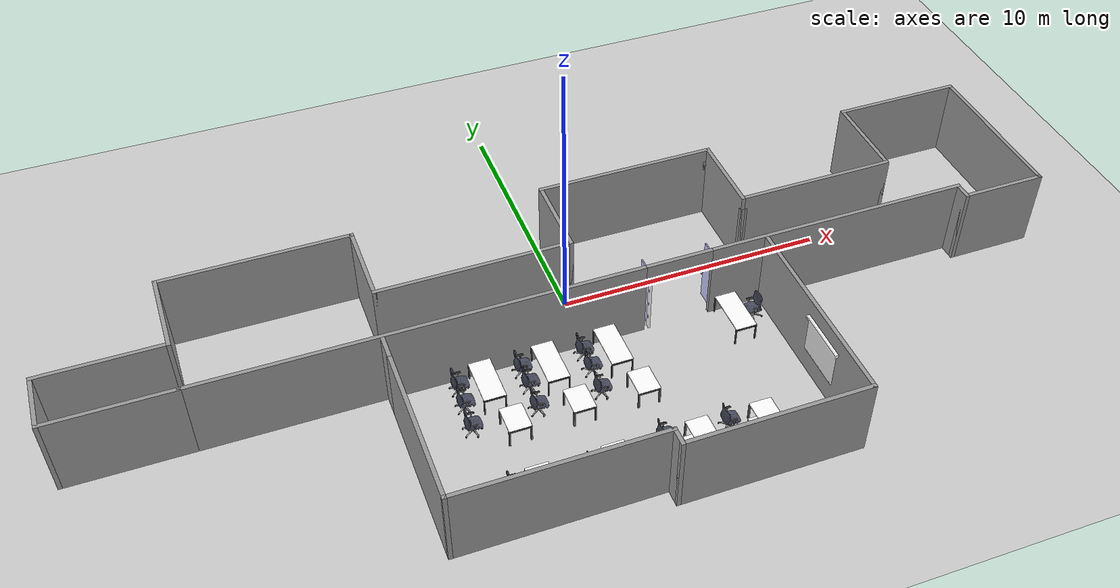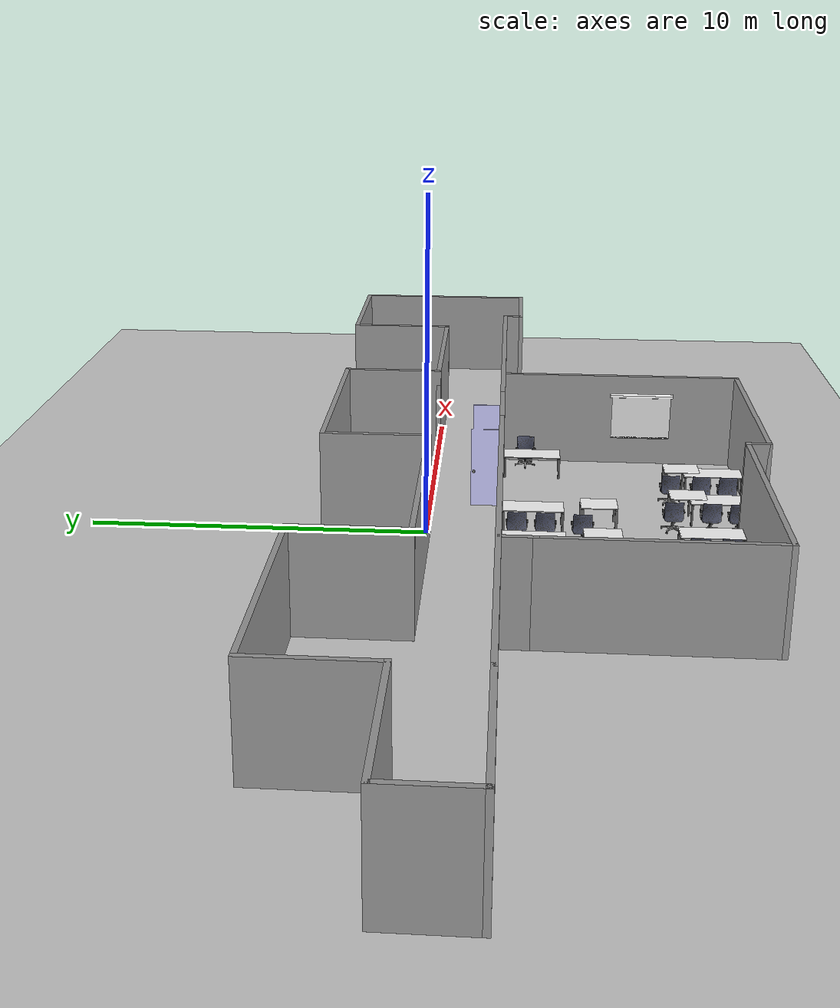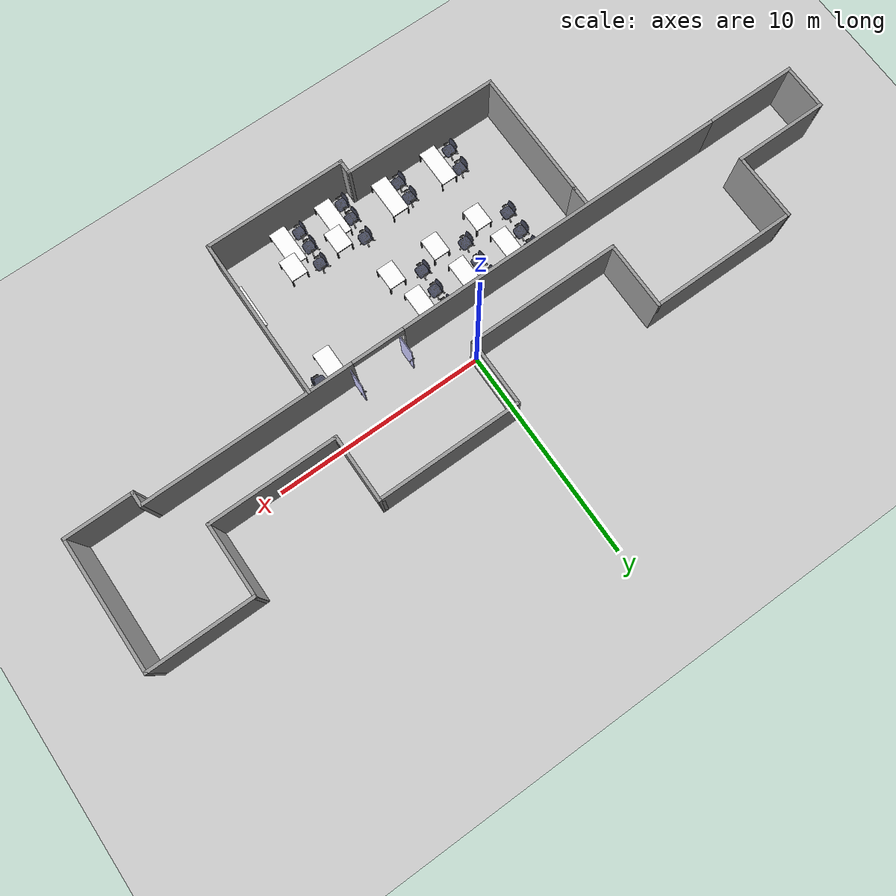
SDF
<sdf version="1.6">
 <world name="default">
  <light name="sun" type="directional">
   <pose>0 0 10 0 -0 0</pose>
   <diffuse>0.8 0.8 0.8 1</diffuse>
   <specular>0.1 0.1 0.1 1</specular>
   <attenuation>
    <range>1000</range>
    <constant>0.9</constant>
    <linear>0.01</linear>
    <quadratic>0.001</quadratic>
   </attenuation>
   <direction>-0.5 0.5 -1</direction>
  </light>
  <model name="ground_plane">
   <static>1</static>
   <link name="link">
    <collision name="collision">
     <geometry><plane><normal>0 0 1</normal><size>100 100</size></plane></geometry>
     <surface><friction><ode><mu>100</mu><mu2>50</mu2></ode></friction></surface>
    </collision>
    <visual name="visual">
     <cast_shadows>0</cast_shadows>
     <geometry><plane><normal>0 0 1</normal><size>100 100</size></plane></geometry>
     <material>
      <script><uri>file://media/materials/scripts/gazebo.material</uri><name>Gazebo/Grey</name></script>
     </material>
    </visual>
   </link>
  </model>
  <gravity>0 0 -9.8</gravity>
  <magnetic_field>6e-06 2.3e-05 -4.2e-05</magnetic_field>
  <atmosphere type="adiabatic"/>
  <physics name="default_physics" default="0" type="ode">
   <max_step_size>0.001</max_step_size>
   <real_time_factor>1</real_time_factor>
   <real_time_update_rate>1000</real_time_update_rate>
  </physics>
  <scene><ambient>0.4 0.4 0.4 1</ambient><background>0.7 0.7 0.7 1</background><shadows>1</shadows></scene>
  <spherical_coordinates>
   <surface_model>EARTH_WGS84</surface_model>
   <latitude_deg>0</latitude_deg>
   <longitude_deg>0</longitude_deg>
   <elevation>0</elevation>
   <heading_deg>0</heading_deg>
  </spherical_coordinates>
  <model name="TableLong_0">
   <model name="tableLong">
    <static>1</static>
    <link name="link">
     <inertial>
      <mass>1</mass>
      <inertia><ixx>0.01</ixx><ixy>0</ixy><ixz>0</ixz><iyy>0.01</iyy><iyz>0</iyz><izz>0.01</izz></inertia>
     </inertial>
     <collision name="collision">
      <geometry><mesh><uri>file://gamma/tableLong.dae</uri></mesh></geometry>
     </collision>
     <visual name="visual"><geometry><mesh><uri>file://gamma/tableLong.dae</uri></mesh></geometry></visual>
    </link>
   </model>
   <static>1</static>
   <pose>-2.57759 -1.92063 0 0 0 -1.57034</pose>
  </model>
  <model name="TableLong_0_clone">
   <model name="tableLong">
    <static>1</static>
    <link name="link">
     <inertial>
      <mass>1</mass>
      <inertia><ixx>0.01</ixx><ixy>0</ixy><ixz>0</ixz><iyy>0.01</iyy><iyz>0</iyz><izz>0.01</izz></inertia>
     </inertial>
     <collision name="collision">
      <geometry><mesh><uri>file://gamma/tableLong.dae</uri></mesh></geometry>
     </collision>
     <visual name="visual"><geometry><mesh><uri>file://gamma/tableLong.dae</uri></mesh></geometry></visual>
    </link>
   </model>
   <static>1</static>
   <pose>-1.62102 -7.51969 0 0 0 -1.57034</pose>
  </model>
  <model name="TableLong_0_clone_0">
   <model name="tableLong">
    <static>1</static>
    <link name="link">
     <inertial>
      <mass>1</mass>
      <inertia><ixx>0.01</ixx><ixy>0</ixy><ixz>0</ixz><iyy>0.01</iyy><iyz>0</iyz><izz>0.01</izz></inertia>
     </inertial>
     <collision name="collision">
      <geometry><mesh><uri>file://gamma/tableLong.dae</uri></mesh></geometry>
     </collision>
     <visual name="visual"><geometry><mesh><uri>file://gamma/tableLong.dae</uri></mesh></geometry></visual>
    </link>
   </model>
   <static>1</static>
   <pose>-4.89637 -1.91843 0 0 0 -1.57034</pose>
  </model>
  <model name="TableLong_0_clone_1">
   <model name="tableLong">
    <static>1</static>
    <link name="link">
     <inertial>
      <mass>1</mass>
      <inertia><ixx>0.01</ixx><ixy>0</ixy><ixz>0</ixz><iyy>0.01</iyy><iyz>0</iyz><izz>0.01</izz></inertia>
     </inertial>
     <collision name="collision">
      <geometry><mesh><uri>file://gamma/tableLong.dae</uri></mesh></geometry>
     </collision>
     <visual name="visual"><geometry><mesh><uri>file://gamma/tableLong.dae</uri></mesh></geometry></visual>
    </link>
   </model>
   <static>1</static>
   <pose>-7.19678 -1.9611 0 0 0 -1.57034</pose>
  </model>
  <model name="TableLong_0_clone_2">
   <model name="tableLong">
    <static>1</static>
    <link name="link">
     <inertial>
      <mass>1</mass>
      <inertia><ixx>0.01</ixx><ixy>0</ixy><ixz>0</ixz><iyy>0.01</iyy><iyz>0</iyz><izz>0.01</izz></inertia>
     </inertial>
     <collision name="collision">
      <geometry><mesh><uri>file://gamma/tableLong.dae</uri></mesh></geometry>
     </collision>
     <visual name="visual"><geometry><mesh><uri>file://gamma/tableLong.dae</uri></mesh></geometry></visual>
    </link>
   </model>
   <static>1</static>
   <pose>-6.86666 -6.92785 0 0 0 -1.57034</pose>
  </model>
  <model name="TableLong_0_clone_3">
   <model name="tableLong">
    <static>1</static>
    <link name="link">
     <inertial>
      <mass>1</mass>
      <inertia><ixx>0.01</ixx><ixy>0</ixy><ixz>0</ixz><iyy>0.01</iyy><iyz>0</iyz><izz>0.01</izz></inertia>
     </inertial>
     <collision name="collision">
      <geometry><mesh><uri>file://gamma/tableLong.dae</uri></mesh></geometry>
     </collision>
     <visual name="visual"><geometry><mesh><uri>file://gamma/tableLong.dae</uri></mesh></geometry></visual>
    </link>
   </model>
   <static>1</static>
   <pose>-4.25811 -6.9373 0 0 0 -1.57034</pose>
  </model>
  <model name="TableLong_0_clone_4">
   <model name="tableLong">
    <static>1</static>
    <link name="link">
     <inertial>
      <mass>1</mass>
      <inertia><ixx>0.01</ixx><ixy>0</ixy><ixz>0</ixz><iyy>0.01</iyy><iyz>0</iyz><izz>0.01</izz></inertia>
     </inertial>
     <collision name="collision">
      <geometry><mesh><uri>file://gamma/tableLong.dae</uri></mesh></geometry>
     </collision>
     <visual name="visual"><geometry><mesh><uri>file://gamma/tableLong.dae</uri></mesh></geometry></visual>
    </link>
   </model>
   <static>1</static>
   <pose>0.69774 -7.56296 0 0 0 -1.57034</pose>
  </model>
  <model name="TableLong_0_clone_4_clone">
   <model name="tableLong">
    <static>1</static>
    <link name="link">
     <inertial>
      <mass>1</mass>
      <inertia><ixx>0.01</ixx><ixy>0</ixy><ixz>0</ixz><iyy>0.01</iyy><iyz>0</iyz><izz>0.01</izz></inertia>
     </inertial>
     <collision name="collision">
      <geometry><mesh><uri>file://gamma/tableLong.dae</uri></mesh></geometry>
     </collision>
     <visual name="visual"><geometry><mesh><uri>file://gamma/tableLong.dae</uri></mesh></geometry></visual>
    </link>
   </model>
   <static>1</static>
   <pose>2.12513 -1.93716 0 0 0 -1.57034</pose>
  </model>
  <model name="chair">
   <model name="chair">
    <static>1</static>
    <link name="link">
     <inertial>
      <mass>1</mass>
      <inertia><ixx>0.01</ixx><ixy>0</ixy><ixz>0</ixz><iyy>0.01</iyy><iyz>0</iyz><izz>0.01</izz></inertia>
     </inertial>
     <collision name="collision"><geometry><mesh><uri>file://gamma/chair.dae</uri></mesh></geometry></collision>
     <visual name="visual"><geometry><mesh><uri>file://gamma/chair.dae</uri></mesh></geometry></visual>
    </link>
   </model>
   <static>1</static>
   <pose>-5.738 -2.17998 0 0 -0 1.55903</pose>
  </model>
  <model name="chair_clone">
   <model name="chair">
    <static>1</static>
    <link name="link">
     <inertial>
      <mass>1</mass>
      <inertia><ixx>0.01</ixx><ixy>0</ixy><ixz>0</ixz><iyy>0.01</iyy><iyz>0</iyz><izz>0.01</izz></inertia>
     </inertial>
     <collision name="collision"><geometry><mesh><uri>file://gamma/chair.dae</uri></mesh></geometry></collision>
     <visual name="visual"><geometry><mesh><uri>file://gamma/chair.dae</uri></mesh></geometry></visual>
    </link>
   </model>
   <static>1</static>
   <pose>-5.79257 -3.02116 0 0 -0 1.55903</pose>
  </model>
  <model name="chair_clone_0">
   <model name="chair">
    <static>1</static>
    <link name="link">
     <inertial>
      <mass>1</mass>
      <inertia><ixx>0.01</ixx><ixy>0</ixy><ixz>0</ixz><iyy>0.01</iyy><iyz>0</iyz><izz>0.01</izz></inertia>
     </inertial>
     <collision name="collision"><geometry><mesh><uri>file://gamma/chair.dae</uri></mesh></geometry></collision>
     <visual name="visual"><geometry><mesh><uri>file://gamma/chair.dae</uri></mesh></geometry></visual>
    </link>
   </model>
   <static>1</static>
   <pose>-5.85785 -4.07208 0 0 -0 1.55903</pose>
  </model>
  <model name="chair_clone_1">
   <model name="chair">
    <static>1</static>
    <link name="link">
     <inertial>
      <mass>1</mass>
      <inertia><ixx>0.01</ixx><ixy>0</ixy><ixz>0</ixz><iyy>0.01</iyy><iyz>0</iyz><izz>0.01</izz></inertia>
     </inertial>
     <collision name="collision"><geometry><mesh><uri>file://gamma/chair.dae</uri></mesh></geometry></collision>
     <visual name="visual"><geometry><mesh><uri>file://gamma/chair.dae</uri></mesh></geometry></visual>
    </link>
   </model>
   <static>1</static>
   <pose>-5.48 -8.0137 0 0 -0 1.55903</pose>
  </model>
  <model name="chair_clone_2">
   <model name="chair">
    <static>1</static>
    <link name="link">
     <inertial>
      <mass>1</mass>
      <inertia><ixx>0.01</ixx><ixy>0</ixy><ixz>0</ixz><iyy>0.01</iyy><iyz>0</iyz><izz>0.01</izz></inertia>
     </inertial>
     <collision name="collision"><geometry><mesh><uri>file://gamma/chair.dae</uri></mesh></geometry></collision>
     <visual name="visual"><geometry><mesh><uri>file://gamma/chair.dae</uri></mesh></geometry></visual>
    </link>
   </model>
   <static>1</static>
   <pose>-5.36894 -7.03181 0 0 -0 1.55903</pose>
  </model>
  <model name="2ndfloor_0.0.2">
   <pose>-0.20355 -3.19019 0 0 -0 0</pose>
   <link name="Wall_1">
    <collision name="Wall_1_Collision">
     <geometry><box><size>6 0.15 3</size></box></geometry>
     <pose>0 0 1.5 0 -0 0</pose>
    </collision>
    <visual name="Wall_1_Visual">
     <pose>0 0 1.5 0 -0 0</pose>
     <geometry><box><size>6 0.15 3</size></box></geometry>
     <material>
      <script><uri>file://media/materials/scripts/gazebo.material</uri><name>Gazebo/Grey</name></script>
      <ambient>1 1 1 1</ambient>
     </material>
     <meta><layer>0</layer></meta>
    </visual>
    <pose>10.125 3.201 0 0 -0 0</pose>
   </link>
   <link name="Wall_10">
    <collision name="Wall_10_Collision">
     <geometry><box><size>4.5 0.15 3</size></box></geometry>
     <pose>0 0 1.5 0 -0 0</pose>
    </collision>
    <visual name="Wall_10_Visual">
     <pose>0 0 1.5 0 -0 0</pose>
     <geometry><box><size>4.5 0.15 3</size></box></geometry>
     <material>
      <script><uri>file://media/materials/scripts/gazebo.material</uri><name>Gazebo/Grey</name></script>
      <ambient>1 1 1 1</ambient>
     </material>
     <meta><layer>0</layer></meta>
    </visual>
    <pose>-15.725 1.051 0 0 -0 3.14159</pose>
   </link>
   <link name="Wall_11">
    <collision name="Wall_11_Collision">
     <geometry><box><size>2.25 0.15 3</size></box></geometry>
     <pose>0 0 1.5 0 -0 0</pose>
    </collision>
    <visual name="Wall_11_Visual">
     <pose>0 0 1.5 0 -0 0</pose>
     <geometry><box><size>2.25 0.15 3</size></box></geometry>
     <material>
      <script><uri>file://media/materials/scripts/gazebo.material</uri><name>Gazebo/Grey</name></script>
      <ambient>1 1 1 1</ambient>
     </material>
     <meta><layer>0</layer></meta>
    </visual>
    <pose>-17.9 2.101 0 0 -0 1.5708</pose>
   </link>
   <link name="Wall_12">
    <collision name="Wall_12_Collision">
     <geometry><box><size>4.5 0.15 3</size></box></geometry>
     <pose>0 0 1.5 0 -0 0</pose>
    </collision>
    <visual name="Wall_12_Visual">
     <pose>0 0 1.5 0 -0 0</pose>
     <geometry><box><size>4.5 0.15 3</size></box></geometry>
     <material>
      <script><uri>file://media/materials/scripts/gazebo.material</uri><name>Gazebo/Grey</name></script>
      <ambient>1 1 1 1</ambient>
     </material>
     <meta><layer>0</layer></meta>
    </visual>
    <pose>-15.725 3.151 0 0 -0 0</pose>
   </link>
   <link name="Wall_13">
    <collision name="Wall_13_Collision">
     <geometry><box><size>3.25 0.15 3</size></box></geometry>
     <pose>0 0 1.5 0 -0 0</pose>
    </collision>
    <visual name="Wall_13_Visual">
     <pose>0 0 1.5 0 -0 0</pose>
     <geometry><box><size>3.25 0.15 3</size></box></geometry>
     <material>
      <script><uri>file://media/materials/scripts/gazebo.material</uri><name>Gazebo/Grey</name></script>
      <ambient>1 1 1 1</ambient>
     </material>
     <meta><layer>0</layer></meta>
    </visual>
    <pose>-13.55 4.701 0 0 -0 1.5708</pose>
   </link>
   <link name="Wall_14">
    <collision name="Wall_14_Collision">
     <geometry><box><size>7 0.15 3</size></box></geometry>
     <pose>0 0 1.5 0 -0 0</pose>
    </collision>
    <visual name="Wall_14_Visual">
     <pose>0 0 1.5 0 -0 0</pose>
     <geometry><box><size>7 0.15 3</size></box></geometry>
     <material>
      <script><uri>file://media/materials/scripts/gazebo.material</uri><name>Gazebo/Grey</name></script>
      <ambient>1 1 1 1</ambient>
     </material>
     <meta><layer>0</layer></meta>
    </visual>
    <pose>-10.125 6.251 0 0 -0 0</pose>
   </link>
   <link name="Wall_15">
    <collision name="Wall_15_Collision">
     <geometry><box><size>3.25 0.15 3</size></box></geometry>
     <pose>0 0 1.5 0 -0 0</pose>
    </collision>
    <visual name="Wall_15_Visual">
     <pose>0 0 1.5 0 -0 0</pose>
     <geometry><box><size>3.25 0.15 3</size></box></geometry>
     <material>
      <script><uri>file://media/materials/scripts/gazebo.material</uri><name>Gazebo/Grey</name></script>
      <ambient>1 1 1 1</ambient>
     </material>
     <meta><layer>0</layer></meta>
    </visual>
    <pose>-6.7 4.701 0 0 -0 -1.5708</pose>
   </link>
   <link name="Wall_16">
    <collision name="Wall_16_Collision">
     <geometry><box><size>7.25 0.15 3</size></box></geometry>
     <pose>0 0 1.5 0 -0 0</pose>
    </collision>
    <visual name="Wall_16_Visual">
     <pose>0 0 1.5 0 -0 0</pose>
     <geometry><box><size>7.25 0.15 3</size></box></geometry>
     <material>
      <script><uri>file://media/materials/scripts/gazebo.material</uri><name>Gazebo/Grey</name></script>
      <ambient>1 1 1 1</ambient>
     </material>
     <meta><layer>0</layer></meta>
    </visual>
    <pose>-3.15 3.151 0 0 -0 0</pose>
   </link>
   <link name="Wall_17">
    <collision name="Wall_17_Collision">
     <geometry><box><size>3.25 0.15 3</size></box></geometry>
     <pose>0 0 1.5 0 -0 0</pose>
    </collision>
    <visual name="Wall_17_Visual">
     <pose>0 0 1.5 0 -0 0</pose>
     <geometry><box><size>3.25 0.15 3</size></box></geometry>
     <material>
      <script><uri>file://media/materials/scripts/gazebo.material</uri><name>Gazebo/Grey</name></script>
      <ambient>1 1 1 1</ambient>
     </material>
     <meta><layer>0</layer></meta>
    </visual>
    <pose>0.399999 4.701 0 0 -0 1.5708</pose>
   </link>
   <link name="Wall_2">
    <collision name="Wall_2_Collision">
     <geometry><box><size>3.5 0.15 3</size></box></geometry>
     <pose>0 0 1.5 0 -0 0</pose>
    </collision>
    <visual name="Wall_2_Visual">
     <pose>0 0 1.5 0 -0 0</pose>
     <geometry><box><size>3.5 0.15 3</size></box></geometry>
     <material>
      <script><uri>file://media/materials/scripts/gazebo.material</uri><name>Gazebo/Grey</name></script>
      <ambient>1 1 1 1</ambient>
     </material>
     <meta><layer>0</layer></meta>
    </visual>
    <pose>13.05 4.876 0 0 -0 1.5708</pose>
   </link>
   <link name="Wall_22">
    <collision name="Wall_22_Collision">
     <geometry><box><size>6.75 0.15 3</size></box></geometry>
     <pose>0 0 1.5 0 -0 0</pose>
    </collision>
    <visual name="Wall_22_Visual">
     <pose>0 0 1.5 0 -0 0</pose>
     <geometry><box><size>6.75 0.15 3</size></box></geometry>
     <material>
      <script><uri>file://media/materials/scripts/gazebo.material</uri><name>Gazebo/Grey</name></script>
      <ambient>1 1 1 1</ambient>
     </material>
     <meta><layer>0</layer></meta>
    </visual>
    <pose>3.7 6.251 0 0 -0 0</pose>
   </link>
   <link name="Wall_26">
    <collision name="Wall_26_Collision">
     <geometry><box><size>0.25 0.15 2.5</size></box></geometry>
     <pose>0 0 1.25 0 -0 0</pose>
    </collision>
    <visual name="Wall_26_Visual">
     <pose>0 0 1.25 0 -0 0</pose>
     <geometry><box><size>0.25 0.15 2.5</size></box></geometry>
     <material>
      <script><uri>file://media/materials/scripts/gazebo.material</uri><name>Gazebo/Grey</name></script>
      <ambient>1 1 1 1</ambient>
     </material>
     <meta><layer>0</layer></meta>
    </visual>
    <pose>7.05 6.251 0 0 -0 0</pose>
   </link>
   <link name="Wall_28">
    <collision name="Wall_28_Collision">
     <geometry><box><size>0.15 0.15 2.5</size></box></geometry>
     <pose>0 0 1.25 0 -0 0</pose>
    </collision>
    <visual name="Wall_28_Visual">
     <pose>0 0 1.25 0 -0 0</pose>
     <geometry><box><size>0.15 0.15 2.5</size></box></geometry>
     <material>
      <script><uri>file://media/materials/scripts/gazebo.material</uri><name>Gazebo/Grey</name></script>
      <ambient>1 1 1 1</ambient>
     </material>
     <meta><layer>0</layer></meta>
    </visual>
    <pose>7.2 3.201 0 0 -0 0</pose>
   </link>
   <link name="Wall_29">
    <collision name="Wall_29_Collision">
     <geometry><box><size>0.15 0.15 2.5</size></box></geometry>
     <pose>0 0 1.25 0 -0 0</pose>
    </collision>
    <visual name="Wall_29_Visual">
     <pose>0 0 1.25 0 -0 0</pose>
     <geometry><box><size>0.15 0.15 2.5</size></box></geometry>
     <material>
      <script><uri>file://media/materials/scripts/gazebo.material</uri><name>Gazebo/Grey</name></script>
      <ambient>1 1 1 1</ambient>
     </material>
     <meta><layer>0</layer></meta>
    </visual>
    <pose>7.2 3.201 0 0 -0 0</pose>
   </link>
   <link name="Wall_3">
    <collision name="Wall_3_Collision">
     <geometry><box><size>5 0.15 3</size></box></geometry>
     <pose>0 0 1.5 0 -0 0</pose>
    </collision>
    <visual name="Wall_3_Visual">
     <pose>0 0 1.5 0 -0 0</pose>
     <geometry><box><size>5 0.15 3</size></box></geometry>
     <material>
      <script><uri>file://media/materials/scripts/gazebo.material</uri><name>Gazebo/Grey</name></script>
      <ambient>1 1 1 1</ambient>
     </material>
     <meta><layer>0</layer></meta>
    </visual>
    <pose>15.475 6.551 0 0 -0 0</pose>
   </link>
   <link name="Wall_30">
    <collision name="Wall_30_Collision">
     <geometry><box><size>0.15 0.15 2.5</size></box></geometry>
     <pose>0 0 1.25 0 -0 0</pose>
    </collision>
    <visual name="Wall_30_Visual">
     <pose>0 0 1.25 0 -0 0</pose>
     <geometry><box><size>0.15 0.15 2.5</size></box></geometry>
     <material>
      <script><uri>file://media/materials/scripts/gazebo.material</uri><name>Gazebo/Grey</name></script>
      <ambient>1 1 1 1</ambient>
     </material>
     <meta><layer>0</layer></meta>
    </visual>
    <pose>7.2 3.201 0 0 -0 0</pose>
   </link>
   <link name="Wall_31">
    <collision name="Wall_31_Collision">
     <geometry><box><size>0.16 0.15 2.5</size></box></geometry>
     <pose>0 0 1.25 0 -0 0</pose>
    </collision>
    <visual name="Wall_31_Visual">
     <pose>0 0 1.25 0 -0 0</pose>
     <geometry><box><size>0.16 0.15 2.5</size></box></geometry>
     <material>
      <script><uri>file://media/materials/scripts/gazebo.material</uri><name>Gazebo/Grey</name></script>
      <ambient>1 1 1 1</ambient>
     </material>
     <meta><layer>0</layer></meta>
    </visual>
    <pose>7.20497 3.20099 0 0 -0 -0.001416</pose>
   </link>
   <link name="Wall_33">
    <collision name="Wall_33_Collision">
     <geometry><box><size>0.25 0.15 2.5</size></box></geometry>
     <pose>0 0 1.25 0 -0 0</pose>
    </collision>
    <visual name="Wall_33_Visual">
     <pose>0 0 1.25 0 -0 0</pose>
     <geometry><box><size>0.25 0.15 2.5</size></box></geometry>
     <material>
      <script><uri>file://media/materials/scripts/gazebo.material</uri><name>Gazebo/Grey</name></script>
      <ambient>1 1 1 1</ambient>
     </material>
     <meta><layer>0</layer></meta>
    </visual>
    <pose>7.15 3.201 0 0 -0 3.14159</pose>
   </link>
   <link name="Wall_34">
    <collision name="Wall_34_Collision">
     <geometry><box><size>3.2 0.15 3</size></box></geometry>
     <pose>0 0 1.5 0 -0 0</pose>
    </collision>
    <visual name="Wall_34_Visual">
     <pose>0 0 1.5 0 -0 0</pose>
     <geometry><box><size>3.2 0.15 3</size></box></geometry>
     <material>
      <script><uri>file://media/materials/scripts/gazebo.material</uri><name>Gazebo/Grey</name></script>
      <ambient>1 1 1 1</ambient>
     </material>
     <meta><layer>0</layer></meta>
    </visual>
    <pose>7.1 4.726 0 0 -0 1.5708</pose>
   </link>
   <link name="Wall_36">
    <collision name="Wall_36_Collision">
     <geometry><box><size>7.75 0.15 3</size></box></geometry>
     <pose>0 0 1.5 0 -0 0</pose>
    </collision>
    <visual name="Wall_36_Visual">
     <pose>0 0 1.5 0 -0 0</pose>
     <geometry><box><size>7.75 0.15 3</size></box></geometry>
     <material>
      <script><uri>file://media/materials/scripts/gazebo.material</uri><name>Gazebo/Grey</name></script>
      <ambient>1 1 1 1</ambient>
     </material>
     <meta><layer>0</layer></meta>
    </visual>
    <pose>6.965 -2.751 0 0 -0 -1.5708</pose>
   </link>
   <link name="Wall_37">
    <collision name="Wall_37_Collision">
     <geometry><box><size>6.75 0.15 3</size></box></geometry>
     <pose>0 0 1.5 0 -0 0</pose>
    </collision>
    <visual name="Wall_37_Visual">
     <pose>0 0 1.5 0 -0 0</pose>
     <geometry><box><size>6.75 0.15 3</size></box></geometry>
     <material>
      <script><uri>file://media/materials/scripts/gazebo.material</uri><name>Gazebo/Grey</name></script>
      <ambient>1 1 1 1</ambient>
     </material>
     <meta><layer>0</layer></meta>
    </visual>
    <pose>3.665 -6.551 0 0 -0 3.14159</pose>
   </link>
   <link name="Wall_38">
    <collision name="Wall_38_Collision">
     <geometry><box><size>0.75 0.15 3</size></box></geometry>
     <pose>0 0 1.5 0 -0 0</pose>
    </collision>
    <visual name="Wall_38_Visual">
     <pose>0 0 1.5 0 -0 0</pose>
     <geometry><box><size>0.75 0.15 3</size></box></geometry>
     <material>
      <script><uri>file://media/materials/scripts/gazebo.material</uri><name>Gazebo/Grey</name></script>
      <ambient>1 1 1 1</ambient>
     </material>
     <meta><layer>0</layer></meta>
    </visual>
    <pose>0.365 -6.251 0 0 -0 1.5708</pose>
   </link>
   <link name="Wall_39">
    <collision name="Wall_39_Collision">
     <geometry><box><size>7.5 0.15 3</size></box></geometry>
     <pose>0 0 1.5 0 -0 0</pose>
    </collision>
    <visual name="Wall_39_Visual">
     <pose>0 0 1.5 0 -0 0</pose>
     <geometry><box><size>7.5 0.15 3</size></box></geometry>
     <material>
      <script><uri>file://media/materials/scripts/gazebo.material</uri><name>Gazebo/Grey</name></script>
      <ambient>1 1 1 1</ambient>
     </material>
     <meta><layer>0</layer></meta>
    </visual>
    <pose>-3.31 -5.951 0 0 -0 3.14159</pose>
   </link>
   <link name="Wall_44">
    <collision name="Wall_44_Collision">
     <geometry><box><size>6.25 0.15 3</size></box></geometry>
     <pose>0 0 1.5 0 -0 0</pose>
    </collision>
    <visual name="Wall_44_Visual">
     <pose>0 0 1.5 0 -0 0</pose>
     <geometry><box><size>6.25 0.15 3</size></box></geometry>
     <material>
      <script><uri>file://media/materials/scripts/gazebo.material</uri><name>Gazebo/Grey</name></script>
      <ambient>1 1 1 1</ambient>
     </material>
     <meta><layer>0</layer></meta>
    </visual>
    <pose>-6.985 -2.901 0 0 -0 1.5708</pose>
   </link>
   <link name="Wall_45">
    <collision name="Wall_45_Collision">
     <geometry><box><size>1 0.15 3</size></box></geometry>
     <pose>0 0 1.5 0 -0 0</pose>
    </collision>
    <visual name="Wall_45_Visual">
     <pose>0 0 1.5 0 -0 0</pose>
     <geometry><box><size>1 0.15 3</size></box></geometry>
     <material>
      <script><uri>file://media/materials/scripts/gazebo.material</uri><name>Gazebo/Grey</name></script>
      <ambient>1 1 1 1</ambient>
     </material>
     <meta><layer>0</layer></meta>
    </visual>
    <pose>-6.985 0.574 0 0 -0 1.5708</pose>
   </link>
   <link name="Wall_6">
    <collision name="Wall_6_Collision">
     <geometry><box><size>6.25 0.15 3</size></box></geometry>
     <pose>0 0 1.5 0 -0 0</pose>
    </collision>
    <visual name="Wall_6_Visual">
     <pose>0 0 1.5 0 -0 0</pose>
     <geometry><box><size>6.25 0.15 3</size></box></geometry>
     <material>
      <script><uri>file://media/materials/scripts/gazebo.material</uri><name>Gazebo/Grey</name></script>
      <ambient>1 1 1 1</ambient>
     </material>
     <meta><layer>0</layer></meta>
    </visual>
    <pose>17.9 3.501 0 0 -0 -1.5708</pose>
   </link>
   <link name="Wall_7">
    <collision name="Wall_7_Collision">
     <geometry><box><size>3.25 0.15 3</size></box></geometry>
     <pose>0 0 1.5 0 -0 0</pose>
    </collision>
    <visual name="Wall_7_Visual">
     <pose>0 0 1.5 0 -0 0</pose>
     <geometry><box><size>3.25 0.15 3</size></box></geometry>
     <material>
      <script><uri>file://media/materials/scripts/gazebo.material</uri><name>Gazebo/Grey</name></script>
      <ambient>1 1 1 1</ambient>
     </material>
     <meta><layer>0</layer></meta>
    </visual>
    <pose>16.35 0.451 0 0 -0 3.14159</pose>
   </link>
   <link name="Wall_8">
    <collision name="Wall_8_Collision">
     <geometry><box><size>0.75 0.15 3</size></box></geometry>
     <pose>0 0 1.5 0 -0 0</pose>
    </collision>
    <visual name="Wall_8_Visual">
     <pose>0 0 1.5 0 -0 0</pose>
     <geometry><box><size>0.75 0.15 3</size></box></geometry>
     <material>
      <script><uri>file://media/materials/scripts/gazebo.material</uri><name>Gazebo/Grey</name></script>
      <ambient>1 1 1 1</ambient>
     </material>
     <meta><layer>0</layer></meta>
    </visual>
    <pose>14.8 0.751 0 0 -0 1.5708</pose>
   </link>
   <link name="Wall_9">
    <pose>0.625 1.051 0 0 -0 3.14159</pose>
    <visual name="Wall_9_Visual_0">
     <pose>-9.256 0 1.5 0 -0 0</pose>
     <geometry><box><size>9.98801 0.15 3</size></box></geometry>
     <material>
      <script><uri>file://media/materials/scripts/gazebo.material</uri><name>Gazebo/Grey</name></script>
      <ambient>1 1 1 1</ambient>
     </material>
     <meta><layer>0</layer></meta>
    </visual>
    <collision name="Wall_9_Collision_0">
     <geometry><box><size>9.98801 0.15 3</size></box></geometry>
     <pose>-9.256 0 1.5 0 -0 0</pose>
    </collision>
    <visual name="Wall_9_Visual_1">
     <pose>6.244 0 1.5 0 -0 0</pose>
     <geometry><box><size>16.012 0.15 3</size></box></geometry>
     <material>
      <script><uri>file://media/materials/scripts/gazebo.material</uri><name>Gazebo/Grey</name></script>
      <ambient>1 1 1 1</ambient>
     </material>
     <meta><layer>0</layer></meta>
    </visual>
    <collision name="Wall_9_Collision_1">
     <geometry><box><size>16.012 0.15 3</size></box></geometry>
     <pose>6.244 0 1.5 0 -0 0</pose>
    </collision>
    <visual name="Wall_9_Visual_2">
     <pose>-3.01199 0 2.75 0 -0 0</pose>
     <geometry><box><size>2.5 0.15 0.5</size></box></geometry>
     <material>
      <script><uri>file://media/materials/scripts/gazebo.material</uri><name>Gazebo/Grey</name></script>
      <ambient>1 1 1 1</ambient>
     </material>
     <meta><layer>0</layer></meta>
    </visual>
    <collision name="Wall_9_Collision_2">
     <geometry><box><size>2.5 0.15 0.5</size></box></geometry>
     <pose>-3.01199 0 2.75 0 -0 0</pose>
    </collision>
   </link>
   <static>1</static>
  </model>
  <model name="tableShortCorrect_0_clone_1_clone">
   <link name="link">
    <pose>-1.44773 -0.968686 0 0 -0 0</pose>
    <inertial>
     <mass>1</mass>
     <inertia><ixx>0.01</ixx><ixy>0</ixy><ixz>0</ixz><iyy>0.01</iyy><iyz>0</iyz><izz>0.01</izz></inertia>
    </inertial>
    <visual name="visual">
     <geometry><mesh><uri>file://gamma/tableShort.dae</uri><scale>1.35 1.35 1</scale></mesh></geometry>
     <material><shader type="vertex"><normal_map>__default__</normal_map></shader></material>
    </visual>
    <collision name="collision">
     <geometry><mesh><uri>file://gamma/tableShort.dae</uri><scale>1.35 1.35 1</scale></mesh></geometry>
     <surface>
      <friction>
       <ode><mu>1</mu><mu2>1</mu2><fdir1>0 0 0</fdir1><slip1>0</slip1><slip2>0</slip2></ode>
       <torsional>
        <coefficient>1</coefficient>
        <patch_radius>0</patch_radius>
        <surface_radius>0</surface_radius>
        <use_patch_radius>1</use_patch_radius>
        <ode><slip>0</slip></ode>
       </torsional>
      </friction>
      <bounce><restitution_coefficient>0</restitution_coefficient><threshold>1e+06</threshold></bounce>
      <contact>
       <collide_without_contact>0</collide_without_contact>
       <collide_without_contact_bitmask>1</collide_without_contact_bitmask>
       <collide_bitmask>1</collide_bitmask>
       <ode>
        <soft_cfm>0</soft_cfm>
        <soft_erp>0.2</soft_erp>
        <kp>1e+13</kp>
        <kd>1</kd>
        <max_vel>0.01</max_vel>
        <min_depth>0</min_depth>
       </ode>
       <bullet>
        <split_impulse>1</split_impulse>
        <split_impulse_penetration_threshold>-0.01</split_impulse_penetration_threshold>
        <soft_cfm>0</soft_cfm>
        <soft_erp>0.2</soft_erp>
        <kp>1e+13</kp>
        <kd>1</kd>
       </bullet>
      </contact>
     </surface>
    </collision>
   </link>
   <static>1</static>
   <pose>-0.080778 -5.41761 0.007702 0 0 -1.56766</pose>
  </model>
  <model name="tableShortCorrect_0_clone_1_clone_0">
   <link name="link">
    <pose>-1.44773 -0.968686 0 0 -0 0</pose>
    <inertial>
     <mass>1</mass>
     <inertia><ixx>0.01</ixx><ixy>0</ixy><ixz>0</ixz><iyy>0.01</iyy><iyz>0</iyz><izz>0.01</izz></inertia>
    </inertial>
    <visual name="visual">
     <geometry><mesh><uri>file://gamma/tableShort.dae</uri><scale>1.35 1.35 1</scale></mesh></geometry>
     <material><shader type="vertex"><normal_map>__default__</normal_map></shader></material>
    </visual>
    <collision name="collision">
     <geometry><mesh><uri>file://gamma/tableShort.dae</uri><scale>1.35 1.35 1</scale></mesh></geometry>
     <surface>
      <friction>
       <ode><mu>1</mu><mu2>1</mu2><fdir1>0 0 0</fdir1><slip1>0</slip1><slip2>0</slip2></ode>
       <torsional>
        <coefficient>1</coefficient>
        <patch_radius>0</patch_radius>
        <surface_radius>0</surface_radius>
        <use_patch_radius>1</use_patch_radius>
        <ode><slip>0</slip></ode>
       </torsional>
      </friction>
      <bounce><restitution_coefficient>0</restitution_coefficient><threshold>1e+06</threshold></bounce>
      <contact>
       <collide_without_contact>0</collide_without_contact>
       <collide_without_contact_bitmask>1</collide_without_contact_bitmask>
       <collide_bitmask>1</collide_bitmask>
       <ode>
        <soft_cfm>0</soft_cfm>
        <soft_erp>0.2</soft_erp>
        <kp>1e+13</kp>
        <kd>1</kd>
        <max_vel>0.01</max_vel>
        <min_depth>0</min_depth>
       </ode>
       <bullet>
        <split_impulse>1</split_impulse>
        <split_impulse_penetration_threshold>-0.01</split_impulse_penetration_threshold>
        <soft_cfm>0</soft_cfm>
        <soft_erp>0.2</soft_erp>
        <kp>1e+13</kp>
        <kd>1</kd>
       </bullet>
      </contact>
     </surface>
    </collision>
   </link>
   <static>1</static>
   <pose>-2.39448 -5.37749 0.007702 0 0 -1.56766</pose>
  </model>
  <model name="tableShortCorrect_0_clone_1_clone_1">
   <link name="link">
    <pose>-1.44773 -0.968686 0 0 -0 0</pose>
    <inertial>
     <mass>1</mass>
     <inertia><ixx>0.01</ixx><ixy>0</ixy><ixz>0</ixz><iyy>0.01</iyy><iyz>0</iyz><izz>0.01</izz></inertia>
    </inertial>
    <visual name="visual">
     <geometry><mesh><uri>file://gamma/tableShort.dae</uri><scale>1.35 1.35 1</scale></mesh></geometry>
     <material><shader type="vertex"><normal_map>__default__</normal_map></shader></material>
    </visual>
    <collision name="collision">
     <geometry><mesh><uri>file://gamma/tableShort.dae</uri><scale>1.35 1.35 1</scale></mesh></geometry>
     <surface>
      <friction>
       <ode><mu>1</mu><mu2>1</mu2><fdir1>0 0 0</fdir1><slip1>0</slip1><slip2>0</slip2></ode>
       <torsional>
        <coefficient>1</coefficient>
        <patch_radius>0</patch_radius>
        <surface_radius>0</surface_radius>
        <use_patch_radius>1</use_patch_radius>
        <ode><slip>0</slip></ode>
       </torsional>
      </friction>
      <bounce><restitution_coefficient>0</restitution_coefficient><threshold>1e+06</threshold></bounce>
      <contact>
       <collide_without_contact>0</collide_without_contact>
       <collide_without_contact_bitmask>1</collide_without_contact_bitmask>
       <collide_bitmask>1</collide_bitmask>
       <ode>
        <soft_cfm>0</soft_cfm>
        <soft_erp>0.2</soft_erp>
        <kp>1e+13</kp>
        <kd>1</kd>
        <max_vel>0.01</max_vel>
        <min_depth>0</min_depth>
       </ode>
       <bullet>
        <split_impulse>1</split_impulse>
        <split_impulse_penetration_threshold>-0.01</split_impulse_penetration_threshold>
        <soft_cfm>0</soft_cfm>
        <soft_erp>0.2</soft_erp>
        <kp>1e+13</kp>
        <kd>1</kd>
       </bullet>
      </contact>
     </surface>
    </collision>
   </link>
   <static>1</static>
   <pose>-3.33977 -2.66459 0.007702 0 0 -1.56766</pose>
  </model>
  <model name="tableShortCorrect_0_clone_1_clone_2">
   <link name="link">
    <pose>-1.44773 -0.968686 0 0 -0 0</pose>
    <inertial>
     <mass>1</mass>
     <inertia><ixx>0.01</ixx><ixy>0</ixy><ixz>0</ixz><iyy>0.01</iyy><iyz>0</iyz><izz>0.01</izz></inertia>
    </inertial>
    <visual name="visual">
     <geometry><mesh><uri>file://gamma/tableShort.dae</uri><scale>1.35 1.35 1</scale></mesh></geometry>
     <material><shader type="vertex"><normal_map>__default__</normal_map></shader></material>
    </visual>
    <collision name="collision">
     <geometry><mesh><uri>file://gamma/tableShort.dae</uri><scale>1.35 1.35 1</scale></mesh></geometry>
     <surface>
      <friction>
       <ode><mu>1</mu><mu2>1</mu2><fdir1>0 0 0</fdir1><slip1>0</slip1><slip2>0</slip2></ode>
       <torsional>
        <coefficient>1</coefficient>
        <patch_radius>0</patch_radius>
        <surface_radius>0</surface_radius>
        <use_patch_radius>1</use_patch_radius>
        <ode><slip>0</slip></ode>
       </torsional>
      </friction>
      <bounce><restitution_coefficient>0</restitution_coefficient><threshold>1e+06</threshold></bounce>
      <contact>
       <collide_without_contact>0</collide_without_contact>
       <collide_without_contact_bitmask>1</collide_without_contact_bitmask>
       <collide_bitmask>1</collide_bitmask>
       <ode>
        <soft_cfm>0</soft_cfm>
        <soft_erp>0.2</soft_erp>
        <kp>1e+13</kp>
        <kd>1</kd>
        <max_vel>0.01</max_vel>
        <min_depth>0</min_depth>
       </ode>
       <bullet>
        <split_impulse>1</split_impulse>
        <split_impulse_penetration_threshold>-0.01</split_impulse_penetration_threshold>
        <soft_cfm>0</soft_cfm>
        <soft_erp>0.2</soft_erp>
        <kp>1e+13</kp>
        <kd>1</kd>
       </bullet>
      </contact>
     </surface>
    </collision>
   </link>
   <static>1</static>
   <pose>-5.66538 -2.66201 0.007702 0 0 -1.56766</pose>
  </model>
  <model name="tableShortCorrect_0_clone_1_clone_4">
   <link name="link">
    <pose>-1.44773 -0.968686 0 0 -0 0</pose>
    <inertial>
     <mass>1</mass>
     <inertia><ixx>0.01</ixx><ixy>0</ixy><ixz>0</ixz><iyy>0.01</iyy><iyz>0</iyz><izz>0.01</izz></inertia>
    </inertial>
    <visual name="visual">
     <geometry><mesh><uri>file://gamma/tableShort.dae</uri><scale>1.35 1.35 1</scale></mesh></geometry>
     <material><shader type="vertex"><normal_map>__default__</normal_map></shader></material>
    </visual>
    <collision name="collision">
     <geometry><mesh><uri>file://gamma/tableShort.dae</uri><scale>1.35 1.35 1</scale></mesh></geometry>
     <surface>
      <friction>
       <ode><mu>1</mu><mu2>1</mu2><fdir1>0 0 0</fdir1><slip1>0</slip1><slip2>0</slip2></ode>
       <torsional>
        <coefficient>1</coefficient>
        <patch_radius>0</patch_radius>
        <surface_radius>0</surface_radius>
        <use_patch_radius>1</use_patch_radius>
        <ode><slip>0</slip></ode>
       </torsional>
      </friction>
      <bounce><restitution_coefficient>0</restitution_coefficient><threshold>1e+06</threshold></bounce>
      <contact>
       <collide_without_contact>0</collide_without_contact>
       <collide_without_contact_bitmask>1</collide_without_contact_bitmask>
       <collide_bitmask>1</collide_bitmask>
       <ode>
        <soft_cfm>0</soft_cfm>
        <soft_erp>0.2</soft_erp>
        <kp>1e+13</kp>
        <kd>1</kd>
        <max_vel>0.01</max_vel>
        <min_depth>0</min_depth>
       </ode>
       <bullet>
        <split_impulse>1</split_impulse>
        <split_impulse_penetration_threshold>-0.01</split_impulse_penetration_threshold>
        <soft_cfm>0</soft_cfm>
        <soft_erp>0.2</soft_erp>
        <kp>1e+13</kp>
        <kd>1</kd>
       </bullet>
      </contact>
     </surface>
    </collision>
   </link>
   <static>1</static>
   <pose>-7.94825 -2.70248 0.007702 0 0 -1.56766</pose>
  </model>
  <model name="projectionScreenCorrect">
   <link name="link">
    <inertial>
     <mass>1</mass>
     <inertia><ixx>0.01</ixx><ixy>0</ixy><ixz>0</ixz><iyy>0.01</iyy><iyz>0</iyz><izz>0.01</izz></inertia>
    </inertial>
    <visual name="visual">
     <geometry><mesh><uri>file://gamma/projectionScreen.dae</uri><scale>1 1 1</scale></mesh></geometry>
     <material><shader type="vertex"><normal_map>__default__</normal_map></shader></material>
    </visual>
    <collision name="collision">
     <geometry><mesh><uri>file://gamma/projectionScreen.dae</uri><scale>1 1 1</scale></mesh></geometry>
     <surface>
      <friction>
       <ode><mu>1</mu><mu2>1</mu2><fdir1>0 0 0</fdir1><slip1>0</slip1><slip2>0</slip2></ode>
       <torsional>
        <coefficient>1</coefficient>
        <patch_radius>0</patch_radius>
        <surface_radius>0</surface_radius>
        <use_patch_radius>1</use_patch_radius>
        <ode><slip>0</slip></ode>
       </torsional>
      </friction>
      <bounce><restitution_coefficient>0</restitution_coefficient><threshold>1e+06</threshold></bounce>
      <contact>
       <collide_without_contact>0</collide_without_contact>
       <collide_without_contact_bitmask>1</collide_without_contact_bitmask>
       <collide_bitmask>1</collide_bitmask>
       <ode>
        <soft_cfm>0</soft_cfm>
        <soft_erp>0.2</soft_erp>
        <kp>1e+13</kp>
        <kd>1</kd>
        <max_vel>0.01</max_vel>
        <min_depth>0</min_depth>
       </ode>
       <bullet>
        <split_impulse>1</split_impulse>
        <split_impulse_penetration_threshold>-0.01</split_impulse_penetration_threshold>
        <soft_cfm>0</soft_cfm>
        <soft_erp>0.2</soft_erp>
        <kp>1e+13</kp>
        <kd>1</kd>
       </bullet>
      </contact>
     </surface>
    </collision>
   </link>
   <static>1</static>
   <pose>6.62943 -5.74727 1.40231 0 0 -1.57311</pose>
  </model>
  <model name="chair_clone_0_clone">
   <model name="chair">
    <static>1</static>
    <link name="link">
     <inertial>
      <mass>1</mass>
      <inertia><ixx>0.01</ixx><ixy>0</ixy><ixz>0</ixz><iyy>0.01</iyy><iyz>0</iyz><izz>0.01</izz></inertia>
     </inertial>
     <collision name="collision"><geometry><mesh><uri>file://gamma/chair.dae</uri></mesh></geometry></collision>
     <visual name="visual"><geometry><mesh><uri>file://gamma/chair.dae</uri></mesh></geometry></visual>
    </link>
   </model>
   <static>1</static>
   <pose>-3.45376 -2.14022 0 0 -0 1.55903</pose>
  </model>
  <model name="chair_clone_0_clone_0">
   <model name="chair">
    <static>1</static>
    <link name="link">
     <inertial>
      <mass>1</mass>
      <inertia><ixx>0.01</ixx><ixy>0</ixy><ixz>0</ixz><iyy>0.01</iyy><iyz>0</iyz><izz>0.01</izz></inertia>
     </inertial>
     <collision name="collision"><geometry><mesh><uri>file://gamma/chair.dae</uri></mesh></geometry></collision>
     <visual name="visual"><geometry><mesh><uri>file://gamma/chair.dae</uri></mesh></geometry></visual>
    </link>
   </model>
   <static>1</static>
   <pose>-3.44231 -2.92998 0 0 -0 1.55903</pose>
  </model>
  <model name="chair_clone_0_clone_1">
   <model name="chair">
    <static>1</static>
    <link name="link">
     <inertial>
      <mass>1</mass>
      <inertia><ixx>0.01</ixx><ixy>0</ixy><ixz>0</ixz><iyy>0.01</iyy><iyz>0</iyz><izz>0.01</izz></inertia>
     </inertial>
     <collision name="collision"><geometry><mesh><uri>file://gamma/chair.dae</uri></mesh></geometry></collision>
     <visual name="visual"><geometry><mesh><uri>file://gamma/chair.dae</uri></mesh></geometry></visual>
    </link>
   </model>
   <static>1</static>
   <pose>-3.50375 -3.98055 0 0 -0 1.55903</pose>
  </model>
  <model name="chair_clone_0_clone_3">
   <model name="chair">
    <static>1</static>
    <link name="link">
     <inertial>
      <mass>1</mass>
      <inertia><ixx>0.01</ixx><ixy>0</ixy><ixz>0</ixz><iyy>0.01</iyy><iyz>0</iyz><izz>0.01</izz></inertia>
     </inertial>
     <collision name="collision"><geometry><mesh><uri>file://gamma/chair.dae</uri></mesh></geometry></collision>
     <visual name="visual"><geometry><mesh><uri>file://gamma/chair.dae</uri></mesh></geometry></visual>
    </link>
   </model>
   <static>1</static>
   <pose>-2.71811 -7.1774 0 0 -0 1.55903</pose>
  </model>
  <model name="chair_clone_0_clone_4">
   <model name="chair">
    <static>1</static>
    <link name="link">
     <inertial>
      <mass>1</mass>
      <inertia><ixx>0.01</ixx><ixy>0</ixy><ixz>0</ixz><iyy>0.01</iyy><iyz>0</iyz><izz>0.01</izz></inertia>
     </inertial>
     <collision name="collision"><geometry><mesh><uri>file://gamma/chair.dae</uri></mesh></geometry></collision>
     <visual name="visual"><geometry><mesh><uri>file://gamma/chair.dae</uri></mesh></geometry></visual>
    </link>
   </model>
   <static>1</static>
   <pose>-2.71801 -8.03742 0 0 -0 1.55903</pose>
  </model>
  <model name="chair_clone_0_clone_5">
   <model name="chair">
    <static>1</static>
    <link name="link">
     <inertial>
      <mass>1</mass>
      <inertia><ixx>0.01</ixx><ixy>0</ixy><ixz>0</ixz><iyy>0.01</iyy><iyz>0</iyz><izz>0.01</izz></inertia>
     </inertial>
     <collision name="collision"><geometry><mesh><uri>file://gamma/chair.dae</uri></mesh></geometry></collision>
     <visual name="visual"><geometry><mesh><uri>file://gamma/chair.dae</uri></mesh></geometry></visual>
    </link>
   </model>
   <static>1</static>
   <pose>-1.15758 -2.12823 0 0 -0 1.55903</pose>
  </model>
  <model name="chair_clone_0_clone_6">
   <model name="chair">
    <static>1</static>
    <link name="link">
     <inertial>
      <mass>1</mass>
      <inertia><ixx>0.01</ixx><ixy>0</ixy><ixz>0</ixz><iyy>0.01</iyy><iyz>0</iyz><izz>0.01</izz></inertia>
     </inertial>
     <collision name="collision"><geometry><mesh><uri>file://gamma/chair.dae</uri></mesh></geometry></collision>
     <visual name="visual"><geometry><mesh><uri>file://gamma/chair.dae</uri></mesh></geometry></visual>
    </link>
   </model>
   <static>1</static>
   <pose>-1.16378 -2.94745 0 0 -0 1.55903</pose>
  </model>
  <model name="chair_clone_0_clone_7">
   <model name="chair">
    <static>1</static>
    <link name="link">
     <inertial>
      <mass>1</mass>
      <inertia><ixx>0.01</ixx><ixy>0</ixy><ixz>0</ixz><iyy>0.01</iyy><iyz>0</iyz><izz>0.01</izz></inertia>
     </inertial>
     <collision name="collision"><geometry><mesh><uri>file://gamma/chair.dae</uri></mesh></geometry></collision>
     <visual name="visual"><geometry><mesh><uri>file://gamma/chair.dae</uri></mesh></geometry></visual>
    </link>
   </model>
   <static>1</static>
   <pose>-1.22424 -4.01701 0 0 -0 1.55903</pose>
  </model>
  <model name="chair_clone_0_clone_8">
   <model name="chair">
    <static>1</static>
    <link name="link">
     <inertial>
      <mass>1</mass>
      <inertia><ixx>0.01</ixx><ixy>0</ixy><ixz>0</ixz><iyy>0.01</iyy><iyz>0</iyz><izz>0.01</izz></inertia>
     </inertial>
     <collision name="collision"><geometry><mesh><uri>file://gamma/chair.dae</uri></mesh></geometry></collision>
     <visual name="visual"><geometry><mesh><uri>file://gamma/chair.dae</uri></mesh></geometry></visual>
    </link>
   </model>
   <static>1</static>
   <pose>-0.052364 -6.73791 0 0 -0 1.55903</pose>
  </model>
  <model name="chair_clone_0_clone_9">
   <model name="chair">
    <static>1</static>
    <link name="link">
     <inertial>
      <mass>1</mass>
      <inertia><ixx>0.01</ixx><ixy>0</ixy><ixz>0</ixz><iyy>0.01</iyy><iyz>0</iyz><izz>0.01</izz></inertia>
     </inertial>
     <collision name="collision"><geometry><mesh><uri>file://gamma/chair.dae</uri></mesh></geometry></collision>
     <visual name="visual"><geometry><mesh><uri>file://gamma/chair.dae</uri></mesh></geometry></visual>
    </link>
   </model>
   <static>1</static>
   <pose>-0.073198 -7.83402 0 0 -0 1.55903</pose>
  </model>
  <model name="chair_clone_0_clone_10">
   <model name="chair">
    <static>1</static>
    <link name="link">
     <inertial>
      <mass>1</mass>
      <inertia><ixx>0.01</ixx><ixy>0</ixy><ixz>0</ixz><iyy>0.01</iyy><iyz>0</iyz><izz>0.01</izz></inertia>
     </inertial>
     <collision name="collision"><geometry><mesh><uri>file://gamma/chair.dae</uri></mesh></geometry></collision>
     <visual name="visual"><geometry><mesh><uri>file://gamma/chair.dae</uri></mesh></geometry></visual>
    </link>
   </model>
   <static>1</static>
   <pose>-0.089906 -8.63473 0 0 -0 1.55903</pose>
  </model>
  <model name="chair_clone_0_clone_11">
   <model name="chair">
    <static>1</static>
    <link name="link">
     <inertial>
      <mass>1</mass>
      <inertia><ixx>0.01</ixx><ixy>0</ixy><ixz>0</ixz><iyy>0.01</iyy><iyz>0</iyz><izz>0.01</izz></inertia>
     </inertial>
     <collision name="collision"><geometry><mesh><uri>file://gamma/chair.dae</uri></mesh></geometry></collision>
     <visual name="visual"><geometry><mesh><uri>file://gamma/chair.dae</uri></mesh></geometry></visual>
    </link>
   </model>
   <static>1</static>
   <pose>2.22194 -6.86034 0 0 -0 1.55903</pose>
  </model>
  <model name="chair_clone_0_clone_12">
   <model name="chair">
    <static>1</static>
    <link name="link">
     <inertial>
      <mass>1</mass>
      <inertia><ixx>0.01</ixx><ixy>0</ixy><ixz>0</ixz><iyy>0.01</iyy><iyz>0</iyz><izz>0.01</izz></inertia>
     </inertial>
     <collision name="collision"><geometry><mesh><uri>file://gamma/chair.dae</uri></mesh></geometry></collision>
     <visual name="visual"><geometry><mesh><uri>file://gamma/chair.dae</uri></mesh></geometry></visual>
    </link>
   </model>
   <static>1</static>
   <pose>2.17332 -7.78646 0 0 -0 1.55903</pose>
  </model>
  <model name="chair_clone_0_clone_13">
   <model name="chair">
    <static>1</static>
    <link name="link">
     <inertial>
      <mass>1</mass>
      <inertia><ixx>0.01</ixx><ixy>0</ixy><ixz>0</ixz><iyy>0.01</iyy><iyz>0</iyz><izz>0.01</izz></inertia>
     </inertial>
     <collision name="collision"><geometry><mesh><uri>file://gamma/chair.dae</uri></mesh></geometry></collision>
     <visual name="visual"><geometry><mesh><uri>file://gamma/chair.dae</uri></mesh></geometry></visual>
    </link>
   </model>
   <static>1</static>
   <pose>2.16664 -8.59619 0 0 -0 1.55903</pose>
  </model>
  <model name="chair_clone_0_clone_14">
   <model name="chair">
    <static>1</static>
    <link name="link">
     <inertial>
      <mass>1</mass>
      <inertia><ixx>0.01</ixx><ixy>0</ixy><ixz>0</ixz><iyy>0.01</iyy><iyz>0</iyz><izz>0.01</izz></inertia>
     </inertial>
     <collision name="collision"><geometry><mesh><uri>file://gamma/chair.dae</uri></mesh></geometry></collision>
     <visual name="visual"><geometry><mesh><uri>file://gamma/chair.dae</uri></mesh></geometry></visual>
    </link>
   </model>
   <static>1</static>
   <pose>6.97821 -3.44167 0 0 0 -1.57525</pose>
  </model>
  <model name="doorsCorrect">
   <link name="link">
    <pose>-0.611193 0 0 0 -0 0</pose>
    <inertial>
     <mass>1</mass>
     <inertia><ixx>0.01</ixx><ixy>0</ixy><ixz>0</ixz><iyy>0.01</iyy><iyz>0</iyz><izz>0.01</izz></inertia>
    </inertial>
    <visual name="visual">
     <geometry><mesh><uri>file://gamma/doors.dae</uri><scale>1.35 1 1.22</scale></mesh></geometry>
     <material><shader type="vertex"><normal_map>__default__</normal_map></shader></material>
    </visual>
    <collision name="collision">
     <geometry><mesh><uri>file://gamma/doors.dae</uri><scale>1.35 1 1.22</scale></mesh></geometry>
     <surface>
      <friction>
       <ode><mu>1</mu><mu2>1</mu2><fdir1>0 0 0</fdir1><slip1>0</slip1><slip2>0</slip2></ode>
       <torsional>
        <coefficient>1</coefficient>
        <patch_radius>0</patch_radius>
        <surface_radius>0</surface_radius>
        <use_patch_radius>1</use_patch_radius>
        <ode><slip>0</slip></ode>
       </torsional>
      </friction>
      <bounce><restitution_coefficient>0</restitution_coefficient><threshold>1e+06</threshold></bounce>
      <contact>
       <collide_without_contact>0</collide_without_contact>
       <collide_without_contact_bitmask>1</collide_without_contact_bitmask>
       <collide_bitmask>1</collide_bitmask>
       <ode>
        <soft_cfm>0</soft_cfm>
        <soft_erp>0.2</soft_erp>
        <kp>1e+13</kp>
        <kd>1</kd>
        <max_vel>0.01</max_vel>
        <min_depth>0</min_depth>
       </ode>
       <bullet>
        <split_impulse>1</split_impulse>
        <split_impulse_penetration_threshold>-0.01</split_impulse_penetration_threshold>
        <soft_cfm>0</soft_cfm>
        <soft_erp>0.2</soft_erp>
        <kp>1e+13</kp>
        <kd>1</kd>
       </bullet>
      </contact>
     </surface>
    </collision>
   </link>
   <static>1</static>
   <pose>3.02434 -2.18151 0 0 -0 0</pose>
  </model>
 </world>
</sdf>
